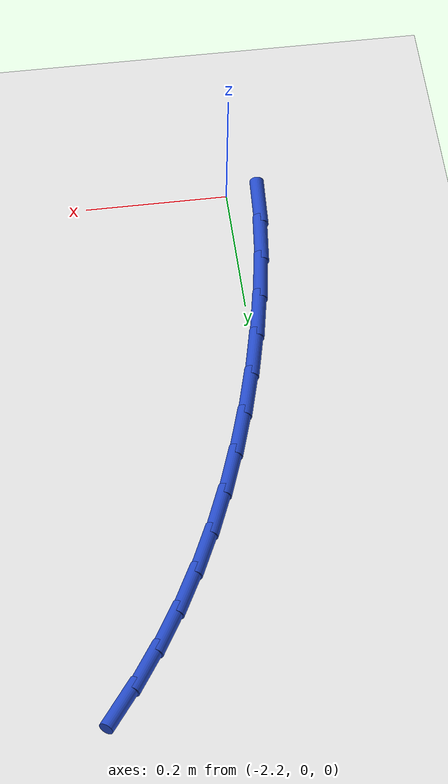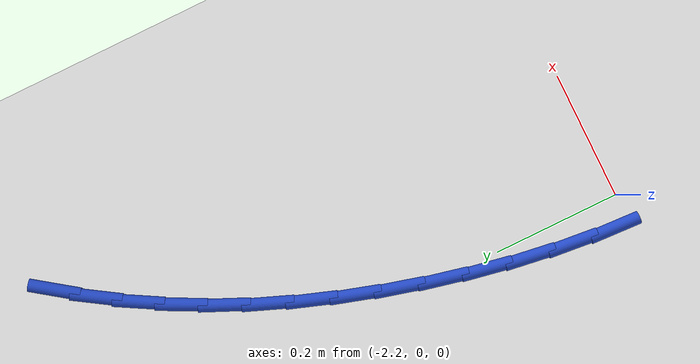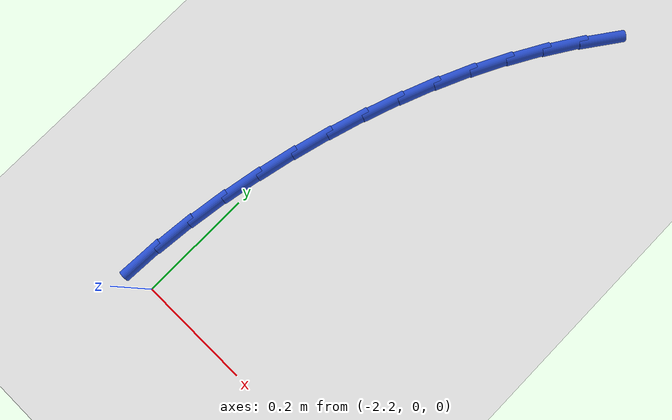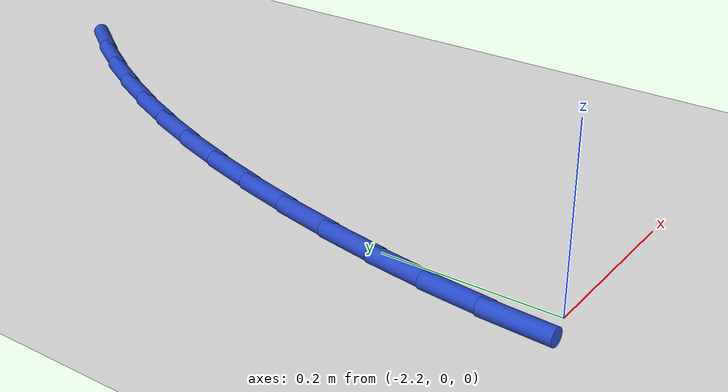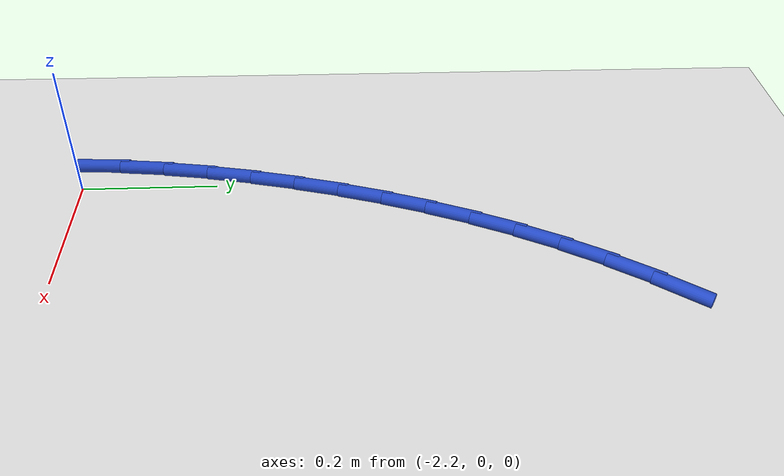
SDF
<sdf version="1.6">
 <world name="default">
  <model name="ground_plane">
   <static>1</static>
   <link name="link">
    <collision name="collision">
     <geometry><plane><normal>0 0 1</normal><size>100 100</size></plane></geometry>
     <surface><friction><ode><mu>100</mu><mu2>50</mu2></ode></friction></surface>
    </collision>
    <visual name="visual">
     <cast_shadows>0</cast_shadows>
     <geometry><plane><normal>0 0 1</normal><size>100 100</size></plane></geometry>
     <material>
      <script><uri>file://media/materials/scripts/gazebo.material</uri><name>Gazebo/WhiteGlow</name></script>
     </material>
    </visual>
   </link>
  </model>
  <model name="line">
   <link name="link_42">
    <pose>-1.955558717563418 0.8258847443602237 0.01 0 1.57 0.9443068533024983</pose>
    <collision name="collision">
     <geometry><cylinder><radius>0.01</radius><length>0.08</length></cylinder></geometry>
    </collision>
    <visual name="visual">
     <material>
      <script><name>Gazebo/Blue</name><uri>file://media/materials/scripts/gazebo.material</uri></script>
     </material>
     <geometry><cylinder><radius>0.01</radius><length>0.08</length></cylinder></geometry>
    </visual>
   </link>
   <link name="link_43">
    <pose>-1.9930715242856332 0.7740536984206831 0.01 0 1.57 1.0005387048050378</pose>
    <collision name="collision">
     <geometry><cylinder><radius>0.01</radius><length>0.08</length></cylinder></geometry>
    </collision>
    <visual name="visual">
     <material>
      <script><name>Gazebo/Blue</name><uri>file://media/materials/scripts/gazebo.material</uri></script>
     </material>
     <geometry><cylinder><radius>0.01</radius><length>0.08</length></cylinder></geometry>
    </visual>
   </link>
   <link name="link_44">
    <pose>-2.027786339943169 0.7199244618008003 0.01 0 1.57 1.0536301984688283</pose>
    <collision name="collision">
     <geometry><cylinder><radius>0.01</radius><length>0.08</length></cylinder></geometry>
    </collision>
    <visual name="visual">
     <material>
      <script><name>Gazebo/Blue</name><uri>file://media/materials/scripts/gazebo.material</uri></script>
     </material>
     <geometry><cylinder><radius>0.01</radius><length>0.08</length></cylinder></geometry>
    </visual>
   </link>
   <link name="link_45">
    <pose>-2.0597826565397925 0.6636726440001679 0.01 0 1.57 1.1036097116656423</pose>
    <collision name="collision">
     <geometry><cylinder><radius>0.01</radius><length>0.08</length></cylinder></geometry>
    </collision>
    <visual name="visual">
     <material>
      <script><name>Gazebo/Blue</name><uri>file://media/materials/scripts/gazebo.material</uri></script>
     </material>
     <geometry><cylinder><radius>0.01</radius><length>0.08</length></cylinder></geometry>
    </visual>
   </link>
   <link name="link_46">
    <pose>-2.0891399660792764 0.6054738545183792 0.01 0 1.57 1.1505631910798733</pose>
    <collision name="collision">
     <geometry><cylinder><radius>0.01</radius><length>0.08</length></cylinder></geometry>
    </collision>
    <visual name="visual">
     <material>
      <script><name>Gazebo/Blue</name><uri>file://media/materials/scripts/gazebo.material</uri></script>
     </material>
     <geometry><cylinder><radius>0.01</radius><length>0.08</length></cylinder></geometry>
    </visual>
   </link>
   <link name="link_47">
    <pose>-2.1159377605653895 0.5455037028550268 0.01 0 1.57 1.1946184015431105</pose>
    <collision name="collision">
     <geometry><cylinder><radius>0.01</radius><length>0.08</length></cylinder></geometry>
    </collision>
    <visual name="visual">
     <material>
      <script><name>Gazebo/Blue</name><uri>file://media/materials/scripts/gazebo.material</uri></script>
     </material>
     <geometry><cylinder><radius>0.01</radius><length>0.08</length></cylinder></geometry>
    </visual>
   </link>
   <link name="link_48">
    <pose>-2.1402555320018997 0.4839377985097031 0.01 0 1.57 1.235931320400546</pose>
    <collision name="collision">
     <geometry><cylinder><radius>0.01</radius><length>0.08</length></cylinder></geometry>
    </collision>
    <visual name="visual">
     <material>
      <script><name>Gazebo/Blue</name><uri>file://media/materials/scripts/gazebo.material</uri></script>
     </material>
     <geometry><cylinder><radius>0.01</radius><length>0.08</length></cylinder></geometry>
    </visual>
   </link>
   <link name="link_49">
    <pose>-2.162172772392579 0.4209517509820015 0.01 0 1.57 1.2746750448218072</pose>
    <collision name="collision">
     <geometry><cylinder><radius>0.01</radius><length>0.08</length></cylinder></geometry>
    </collision>
    <visual name="visual">
     <material>
      <script><name>Gazebo/Blue</name><uri>file://media/materials/scripts/gazebo.material</uri></script>
     </material>
     <geometry><cylinder><radius>0.01</radius><length>0.08</length></cylinder></geometry>
    </visual>
   </link>
   <link name="link_50">
    <pose>-2.1817689737411965 0.356721169771514 0.01 0 1.57 1.3110987315840563</pose>
    <collision name="collision">
     <geometry><cylinder><radius>0.01</radius><length>0.08</length></cylinder></geometry>
    </collision>
    <visual name="visual">
     <material>
      <script><name>Gazebo/Blue</name><uri>file://media/materials/scripts/gazebo.material</uri></script>
     </material>
     <geometry><cylinder><radius>0.01</radius><length>0.08</length></cylinder></geometry>
    </visual>
   </link>
   <link name="link_51">
    <pose>-2.1991183706554684 0.29142368006954633 0.01 0 1.57 1.3472180988960702</pose>
    <collision name="collision">
     <geometry><cylinder><radius>0.01</radius><length>0.08</length></cylinder></geometry>
    </collision>
    <visual name="visual">
     <material>
      <script><name>Gazebo/Blue</name><uri>file://media/materials/scripts/gazebo.material</uri></script>
     </material>
     <geometry><cylinder><radius>0.01</radius><length>0.08</length></cylinder></geometry>
    </visual>
   </link>
   <link name="link_52">
    <pose>-2.2141557349816368 0.22529037725106693 0.01 0 1.57 1.3853478796025658</pose>
    <collision name="collision">
     <geometry><cylinder><radius>0.01</radius><length>0.08</length></cylinder></geometry>
    </collision>
    <visual name="visual">
     <material>
      <script><name>Gazebo/Blue</name><uri>file://media/materials/scripts/gazebo.material</uri></script>
     </material>
     <geometry><cylinder><radius>0.01</radius><length>0.08</length></cylinder></geometry>
    </visual>
   </link>
   <link name="link_53">
    <pose>-2.226665223352694 0.15861010273758414 0.01 0 1.57 1.4260299789272748</pose>
    <collision name="collision">
     <geometry><cylinder><radius>0.01</radius><length>0.08</length></cylinder></geometry>
    </collision>
    <visual name="visual">
     <material>
      <script><name>Gazebo/Blue</name><uri>file://media/materials/scripts/gazebo.material</uri></script>
     </material>
     <geometry><cylinder><radius>0.01</radius><length>0.08</length></cylinder></geometry>
    </visual>
   </link>
   <link name="link_54">
    <pose>-2.236423500376224 0.09167457040179224 0.01 0 1.57 1.4697393029503116</pose>
    <collision name="collision">
     <geometry><cylinder><radius>0.01</radius><length>0.08</length></cylinder></geometry>
    </collision>
    <visual name="visual">
     <material>
      <script><name>Gazebo/Blue</name><uri>file://media/materials/scripts/gazebo.material</uri></script>
     </material>
     <geometry><cylinder><radius>0.01</radius><length>0.08</length></cylinder></geometry>
    </visual>
   </link>
   <link name="link_55">
    <pose>-2.2432072306598125 0.02477549411638564 0.01 0 1.57 1.5169832375519852</pose>
    <collision name="collision">
     <geometry><cylinder><radius>0.01</radius><length>0.08</length></cylinder></geometry>
    </collision>
    <visual name="visual">
     <material>
      <script><name>Gazebo/Blue</name><uri>file://media/materials/scripts/gazebo.material</uri></script>
     </material>
     <geometry><cylinder><radius>0.01</radius><length>0.08</length></cylinder></geometry>
    </visual>
   </link>
  </model>
 </world>
</sdf>
